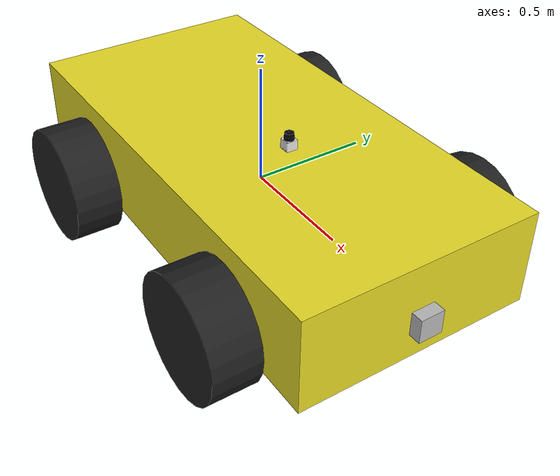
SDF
<?xml version='1.0'?>
<sdf version='1.6'>
  <model name='av_robot'>
    <link name='base_frame'>
      <pose frame=''>0 5e-06 0.04 0 -0 0</pose>
      <inertial>
        <mass>20</mass>
        <inertia>
          <ixx>0</ixx>
          <ixy>0</ixy>
          <ixz>0</ixz>
          <iyy>0</iyy>
          <iyz>0</iyz>
          <izz>0</izz>
        </inertia>
        <pose frame=''>0 0 0 0 -0 0</pose>
      </inertial>
      <gravity>1</gravity>
      <self_collide>0</self_collide>
      <kinematic>0</kinematic>
      <visual name='visual'>
        <pose frame=''>0 0 0 0 -0 0</pose>
        <geometry>
          <box>
            <size>2 1 0.4</size>
          </box>
        </geometry>
        <material>
          <lighting>1</lighting>
          <script>
            <uri>file://media/materials/scripts/gazebo.material</uri>
            <name>Gazebo/Yellow</name>
          </script>
          <ambient>0.3 0.3 0.3 1</ambient>
          <diffuse>0.7 0.7 0.7 1</diffuse>
          <specular>0.01 0.01 0.01 1</specular>
          <emissive>0 0 0 1</emissive>
          <shader type='vertex'>
            <normal_map>__default__</normal_map>
          </shader>
        </material>
        <cast_shadows>1</cast_shadows>
        <transparency>0</transparency>
      </visual>
      <collision name='collision'>
        <laser_retro>0</laser_retro>
        <max_contacts>10</max_contacts>
        <pose frame=''>0 0 0 0 -0 0</pose>
        <geometry>
          <box>
            <size>1 1 0.3</size>
          </box>
        </geometry>
        <surface>
          <friction>
            <ode>
              <mu>1</mu>
              <mu2>1</mu2>
              <fdir1>0 0 0</fdir1>
              <slip1>0</slip1>
              <slip2>0</slip2>
            </ode>
            <torsional>
              <coefficient>1</coefficient>
              <patch_radius>0</patch_radius>
              <surface_radius>0</surface_radius>
              <use_patch_radius>1</use_patch_radius>
              <ode>
                <slip>0</slip>
              </ode>
            </torsional>
          </friction>
          <bounce>
            <restitution_coefficient>0</restitution_coefficient>
            <threshold>1e+06</threshold>
          </bounce>
          <contact>
            <collide_without_contact>0</collide_without_contact>
            <collide_without_contact_bitmask>1</collide_without_contact_bitmask>
            <collide_bitmask>1</collide_bitmask>
            <ode>
              <soft_cfm>0</soft_cfm>
              <soft_erp>0.2</soft_erp>
              <kp>1e+13</kp>
              <kd>1</kd>
              <max_vel>0.01</max_vel>
              <min_depth>0</min_depth>
            </ode>
            <bullet>
              <split_impulse>1</split_impulse>
              <split_impulse_penetration_threshold>-0.01</split_impulse_penetration_threshold>
              <soft_cfm>0</soft_cfm>
              <soft_erp>0.2</soft_erp>
              <kp>1e+13</kp>
              <kd>1</kd>
            </bullet>
          </contact>
        </surface>
      </collision>
    </link>

    <link name='front_left_wheel'>
      <pose frame=''>0.55 0.6 -0.1 1.5707 -0 0</pose>
      <inertial>
        <mass>0.01</mass>
        <inertia>
          <ixx>0</ixx>
          <ixy>0</ixy>
          <ixz>0</ixz>
          <iyy>0</iyy>
          <iyz>0</iyz>
          <izz>0</izz>
        </inertia>
        <pose frame=''>0 0 0 0 -0 0</pose>
      </inertial>
      <gravity>1</gravity>
      <self_collide>0</self_collide>
      <kinematic>0</kinematic>
      <visual name='visual'>
        <pose frame=''>0 0 0 0 -0 0</pose>
        <geometry>
          <cylinder>
            <radius>0.25</radius>
            <length>0.2</length>
          </cylinder>
        </geometry>
        <material>
          <lighting>1</lighting>
          <script>
            <uri>file://media/materials/scripts/gazebo.material</uri>
            <name>Gazebo/Black</name>
          </script>
          <ambient>0.3 0.3 0.3 1</ambient>
          <diffuse>0.7 0.7 0.7 1</diffuse>
          <specular>0.01 0.01 0.01 1</specular>
          <emissive>0 0 0 1</emissive>
          <shader type='vertex'>
            <normal_map>__default__</normal_map>
          </shader>
        </material>
        <cast_shadows>1</cast_shadows>
        <transparency>0</transparency>
      </visual>
      <collision name='collision'>
        <laser_retro>0</laser_retro>
        <max_contacts>10</max_contacts>
        <pose frame=''>0 0 0 0 -0 0</pose>
        <geometry>
          <cylinder>
            <radius>0.25</radius>
            <length>0.2</length>
          </cylinder>
        </geometry>
        <surface>
          <friction>
            <ode>
              <mu>1</mu>
              <mu2>1</mu2>
              <fdir1>0 0 0</fdir1>
              <slip1>0</slip1>
              <slip2>0</slip2>
            </ode>
            <torsional>
              <coefficient>1</coefficient>
              <patch_radius>0</patch_radius>
              <surface_radius>0</surface_radius>
              <use_patch_radius>1</use_patch_radius>
              <ode>
                <slip>0</slip>
              </ode>
            </torsional>
          </friction>
          <bounce>
            <restitution_coefficient>0</restitution_coefficient>
            <threshold>1e+06</threshold>
          </bounce>
          <contact>
            <collide_without_contact>0</collide_without_contact>
            <collide_without_contact_bitmask>1</collide_without_contact_bitmask>
            <collide_bitmask>1</collide_bitmask>
            <ode>
              <soft_cfm>0</soft_cfm>
              <soft_erp>0.2</soft_erp>
              <kp>1e+13</kp>
              <kd>1</kd>
              <max_vel>0.01</max_vel>
              <min_depth>0</min_depth>
            </ode>
            <bullet>
              <split_impulse>1</split_impulse>
              <split_impulse_penetration_threshold>-0.01</split_impulse_penetration_threshold>
              <soft_cfm>0</soft_cfm>
              <soft_erp>0.2</soft_erp>
              <kp>1e+13</kp>
              <kd>1</kd>
            </bullet>
          </contact>
        </surface>
      </collision>
    </link>
    <link name='front_right_wheel'>
      <pose frame=''>0.55 -0.6 -0.1 1.5707 -0 0</pose>
      <inertial>
        <mass>0.01</mass>
        <inertia>
          <ixx>0</ixx>
          <ixy>0</ixy>
          <ixz>0</ixz>
          <iyy>0</iyy>
          <iyz>0</iyz>
          <izz>0</izz>
        </inertia>
        <pose frame=''>0 0 0 0 -0 0</pose>
      </inertial>
      <self_collide>0</self_collide>
      <kinematic>0</kinematic>
      <gravity>1</gravity>
      <visual name='visual'>
        <pose frame=''>0 0 0 0 -0 0</pose>
        <geometry>
          <cylinder>
            <radius>0.25</radius>
            <length>0.2</length>
          </cylinder>
        </geometry>
        <material>
          <lighting>1</lighting>
          <script>
            <uri>file://media/materials/scripts/gazebo.material</uri>
            <name>Gazebo/Black</name>
          </script>
          <ambient>0.3 0.3 0.3 1</ambient>
          <diffuse>0.7 0.7 0.7 1</diffuse>
          <specular>0.01 0.01 0.01 1</specular>
          <emissive>0 0 0 1</emissive>
          <shader type='vertex'>
            <normal_map>__default__</normal_map>
          </shader>
        </material>
        <cast_shadows>1</cast_shadows>
        <transparency>0</transparency>
      </visual>
      <collision name='collision'>
        <laser_retro>0</laser_retro>
        <max_contacts>10</max_contacts>
        <pose frame=''>0 0 0 0 -0 0</pose>
        <geometry>
          <cylinder>
            <radius>0.25</radius>
            <length>0.2</length>
          </cylinder>
        </geometry>
        <surface>
          <friction>
            <ode>
              <mu>1</mu>
              <mu2>1</mu2>
              <fdir1>0 0 0</fdir1>
              <slip1>0</slip1>
              <slip2>0</slip2>
            </ode>
            <torsional>
              <coefficient>1</coefficient>
              <patch_radius>0</patch_radius>
              <surface_radius>0</surface_radius>
              <use_patch_radius>1</use_patch_radius>
              <ode>
                <slip>0</slip>
              </ode>
            </torsional>
          </friction>
          <bounce>
            <restitution_coefficient>0</restitution_coefficient>
            <threshold>1e+06</threshold>
          </bounce>
          <contact>
            <collide_without_contact>0</collide_without_contact>
            <collide_without_contact_bitmask>1</collide_without_contact_bitmask>
            <collide_bitmask>1</collide_bitmask>
            <ode>
              <soft_cfm>0</soft_cfm>
              <soft_erp>0.2</soft_erp>
              <kp>1e+13</kp>
              <kd>1</kd>
              <max_vel>0.01</max_vel>
              <min_depth>0</min_depth>
            </ode>
            <bullet>
              <split_impulse>1</split_impulse>
              <split_impulse_penetration_threshold>-0.01</split_impulse_penetration_threshold>
              <soft_cfm>0</soft_cfm>
              <soft_erp>0.2</soft_erp>
              <kp>1e+13</kp>
              <kd>1</kd>
            </bullet>
          </contact>
        </surface>
      </collision>
    </link>
    <link name='back_left_wheel'>
      <pose frame=''>-0.55 0.6 -0.1 1.5707 -0 0</pose>
      <inertial>
        <mass>0.01</mass>
        <inertia>
          <ixx>0</ixx>
          <ixy>0</ixy>
          <ixz>0</ixz>
          <iyy>0</iyy>
          <iyz>0</iyz>
          <izz>0</izz>
        </inertia>
        <pose frame=''>0 0 0 0 -0 0</pose>
      </inertial>
      <self_collide>0</self_collide>
      <kinematic>0</kinematic>
      <gravity>1</gravity>
      <visual name='visual'>
        <pose frame=''>0 0 0 0 -0 0</pose>
        <geometry>
          <cylinder>
            <radius>0.25</radius>
            <length>0.2</length>
          </cylinder>
        </geometry>
        <material>
          <lighting>1</lighting>
          <script>
            <uri>file://media/materials/scripts/gazebo.material</uri>
            <name>Gazebo/Black</name>
          </script>
          <ambient>0.3 0.3 0.3 1</ambient>
          <diffuse>0.7 0.7 0.7 1</diffuse>
          <specular>0.01 0.01 0.01 1</specular>
          <emissive>0 0 0 1</emissive>
          <shader type='vertex'>
            <normal_map>__default__</normal_map>
          </shader>
        </material>
        <cast_shadows>1</cast_shadows>
        <transparency>0</transparency>
      </visual>
      <collision name='collision'>
        <laser_retro>0</laser_retro>
        <max_contacts>10</max_contacts>
        <pose frame=''>0 0 0 0 -0 0</pose>
        <geometry>
          <cylinder>
            <radius>0.25</radius>
            <length>0.2</length>
          </cylinder>
        </geometry>
        <surface>
          <friction>
            <ode>
              <mu>1</mu>
              <mu2>1</mu2>
              <fdir1>0 0 0</fdir1>
              <slip1>0</slip1>
              <slip2>0</slip2>
            </ode>
            <torsional>
              <coefficient>1</coefficient>
              <patch_radius>0</patch_radius>
              <surface_radius>0</surface_radius>
              <use_patch_radius>1</use_patch_radius>
              <ode>
                <slip>0</slip>
              </ode>
            </torsional>
          </friction>
          <bounce>
            <restitution_coefficient>0</restitution_coefficient>
            <threshold>1e+06</threshold>
          </bounce>
          <contact>
            <collide_without_contact>0</collide_without_contact>
            <collide_without_contact_bitmask>1</collide_without_contact_bitmask>
            <collide_bitmask>1</collide_bitmask>
            <ode>
              <soft_cfm>0</soft_cfm>
              <soft_erp>0.2</soft_erp>
              <kp>1e+13</kp>
              <kd>1</kd>
              <max_vel>0.01</max_vel>
              <min_depth>0</min_depth>
            </ode>
            <bullet>
              <split_impulse>1</split_impulse>
              <split_impulse_penetration_threshold>-0.01</split_impulse_penetration_threshold>
              <soft_cfm>0</soft_cfm>
              <soft_erp>0.2</soft_erp>
              <kp>1e+13</kp>
              <kd>1</kd>
            </bullet>
          </contact>
        </surface>
      </collision>
    </link>
    <link name='back_right_wheel'>
      <pose frame=''>-0.55 -0.6 -0.1 1.5707 -0 0</pose>
      <inertial>
        <mass>0.01</mass>
        <inertia>
          <ixx>0</ixx>
          <ixy>0</ixy>
          <ixz>0</ixz>
          <iyy>0</iyy>
          <iyz>0</iyz>
          <izz>0</izz>
        </inertia>
        <pose frame=''>0 0 0 0 -0 0</pose>
      </inertial>
      <self_collide>0</self_collide>
      <kinematic>0</kinematic>
      <gravity>1</gravity>
      <visual name='visual'>
        <pose frame=''>0 0 0 0 -0 0</pose>
        <geometry>
          <cylinder>
            <radius>0.25</radius>
            <length>0.2</length>
          </cylinder>
        </geometry>
        <material>
          <lighting>1</lighting>
          <script>
            <uri>file://media/materials/scripts/gazebo.material</uri>
            <name>Gazebo/Black</name>
          </script>
          <ambient>0.3 0.3 0.3 1</ambient>
          <diffuse>0.7 0.7 0.7 1</diffuse>
          <specular>0.01 0.01 0.01 1</specular>
          <emissive>0 0 0 1</emissive>
          <shader type='vertex'>
            <normal_map>__default__</normal_map>
          </shader>
        </material>
        <cast_shadows>1</cast_shadows>
        <transparency>0</transparency>
      </visual>
      <collision name='collision'>
        <laser_retro>0</laser_retro>
        <max_contacts>10</max_contacts>
        <pose frame=''>0 0 0 0 -0 0</pose>
        <geometry>
          <cylinder>
            <radius>0.25</radius>
            <length>0.2</length>
          </cylinder>
        </geometry>
        <surface>
          <friction>
            <ode>
              <mu>1</mu>
              <mu2>1</mu2>
              <fdir1>0 0 0</fdir1>
              <slip1>0</slip1>
              <slip2>0</slip2>
            </ode>
            <torsional>
              <coefficient>1</coefficient>
              <patch_radius>0</patch_radius>
              <surface_radius>0</surface_radius>
              <use_patch_radius>1</use_patch_radius>
              <ode>
                <slip>0</slip>
              </ode>
            </torsional>
          </friction>
          <bounce>
            <restitution_coefficient>0</restitution_coefficient>
            <threshold>1e+06</threshold>
          </bounce>
          <contact>
            <collide_without_contact>0</collide_without_contact>
            <collide_without_contact_bitmask>1</collide_without_contact_bitmask>
            <collide_bitmask>1</collide_bitmask>
            <ode>
              <soft_cfm>0</soft_cfm>
              <soft_erp>0.2</soft_erp>
              <kp>1e+13</kp>
              <kd>1</kd>
              <max_vel>0.01</max_vel>
              <min_depth>0</min_depth>
            </ode>
            <bullet>
              <split_impulse>1</split_impulse>
              <split_impulse_penetration_threshold>-0.01</split_impulse_penetration_threshold>
              <soft_cfm>0</soft_cfm>
              <soft_erp>0.2</soft_erp>
              <kp>1e+13</kp>
              <kd>1</kd>
            </bullet>
          </contact>
        </surface>
      </collision>
    </link>

    <model name='img_camera'>
      <link name='camera_link'>
        <gravity>0</gravity>
        <pose frame=''>0 0 0 0 -0 0</pose>
        <visual name='visual'>
          <geometry>
            <box>
              <size>0.1 0.1 0.1</size>
            </box>
          </geometry>
        </visual>
        <sensor name='sensor' type='camera'>
          <update_rate>30</update_rate>
          <visualize>true</visualize>
          <plugin name="camera_controller" filename="libgazebo_ros_camera.so">
            <alwaysOn>true</alwaysOn>
            <updateRate>30</updateRate>
            <cameraName>camera_front</cameraName>
            <imageTopicName>image_raw</imageTopicName>
            <cameraInfoTopicName>camera_info</cameraInfoTopicName>
            <frameName>camera_link</frameName>
            <hackBaseline>0.07</hackBaseline>
            <distortionK1>0.0</distortionK1>
            <distortionK2>0.0</distortionK2>
            <distortionK3>0.0</distortionK3>
            <distortionT1>0.0</distortionT1>
            <distortionT2>0.0</distortionT2>
          </plugin>
        </sensor>
      </link>
      <pose frame=''>1 0.0 0 0 0 0</pose>
    </model>

    <model name="hokuyo">
      <pose>0 0 0.035 0 0 0</pose>
      <link name="link">
        <inertial>
          <mass>0.1</mass>
        </inertial>
        <visual name="visual">
          <geometry>
            <mesh>
              <uri>model://hokuyo/meshes/hokuyo.dae</uri>
            </mesh>
          </geometry>
        </visual>
        <collision name="collision-base">
          <pose>0 0 -0.0145 0 0 0</pose>
          <geometry>
            <box>
              <size>0.05 0.05 0.041</size>
            </box>
          </geometry>
        </collision>
        <collision name="collision-top">
          <pose>0 0 0.0205 0 0 0</pose>
          <geometry>
            <cylinder>
              <radius>0.021</radius>
              <length>0.029</length>
            </cylinder>
          </geometry>
        </collision>
        <sensor name="head_hokuyo_sensor" type="ray">
          <pose>0.01 0 0.0175 0 -0 0</pose>
          <plugin name="gazebo_ros_head_hokuyo_controller" filename="libgazebo_ros_laser.so">
            <topicName>/av_robot/laser/scan</topicName>
            <frameName>hokuyo</frameName>
          </plugin>
          <update_rate>10</update_rate>
          <ray>
            <scan>
              <horizontal>
                <samples>640</samples>
                <resolution>1</resolution>
                <min_angle>-2.26889</min_angle>
                <max_angle>2.268899</max_angle>
              </horizontal>
            </scan>
            <range>
              <min>0.08</min>
              <max>10</max>
              <resolution>0.01</resolution>
            </range>
            <noise>
              <type>gaussian</type>
              <mean>0.0</mean>
              <stddev>0.01</stddev>
            </noise>
          </ray>
          <always_on>1</always_on>
          <visualize>true</visualize>
        </sensor>
        <pose>0.2 0 0.25 0 0 0</pose>
      </link>
    </model>
    <joint name="hokuyo_joint" type="fixed">
      <child>hokuyo::link</child>
      <parent>base_frame</parent>
    </joint>

    <joint name='front_left_hinge' type='revolute'>
      <parent>base_frame</parent>
      <child>front_left_wheel</child>
      <pose frame=''>0 0 0 0 -0 0</pose>
      <axis>
        <xyz>0 0 1</xyz>
        <use_parent_model_frame>0</use_parent_model_frame>
        <limit>
          <lower>-1.79769e+308</lower>
          <upper>1.79769e+308</upper>
          <effort>-1</effort>
          <velocity>-1</velocity>
        </limit>
        <dynamics>
          <spring_reference>0</spring_reference>
          <spring_stiffness>0</spring_stiffness>
          <damping>0</damping>
        </dynamics>
      </axis>
      <physics>
        <ode>
          <limit>
            <cfm>0</cfm>
            <erp>0.2</erp>
          </limit>
          <suspension>
            <cfm>0</cfm>
            <erp>0.2</erp>
          </suspension>
        </ode>
      </physics>
    </joint>
    <joint name='front_right_hinge' type='revolute'>
      <parent>base_frame</parent>
      <child>front_right_wheel</child>
      <pose frame=''>0 0 0 0 -0 0</pose>
      <axis>
        <xyz>-0 -0 -1</xyz>
        <use_parent_model_frame>0</use_parent_model_frame>
        <limit>
          <lower>-1.79769e+308</lower>
          <upper>1.79769e+308</upper>
          <effort>-1</effort>
          <velocity>-1</velocity>
        </limit>
        <dynamics>
          <spring_reference>0</spring_reference>
          <spring_stiffness>0</spring_stiffness>
          <damping>0</damping>
        </dynamics>
      </axis>
      <physics>
        <ode>
          <limit>
            <cfm>0</cfm>
            <erp>0.2</erp>
          </limit>
          <suspension>
            <cfm>0</cfm>
            <erp>0.2</erp>
          </suspension>
        </ode>
      </physics>
    </joint>
    <joint name='back_left_hinge' type='revolute'>
      <parent>base_frame</parent>
      <child>back_left_wheel</child>
      <pose frame=''>0 0 0 0 -0 0</pose>
      <axis>
        <xyz>0 0 1</xyz>
        <use_parent_model_frame>0</use_parent_model_frame>
        <limit>
          <lower>-1.79769e+308</lower>
          <upper>1.79769e+308</upper>
          <effort>-1</effort>
          <velocity>-1</velocity>
        </limit>
        <dynamics>
          <spring_reference>0</spring_reference>
          <spring_stiffness>0</spring_stiffness>
          <damping>0</damping>
        </dynamics>
      </axis>
      <physics>
        <ode>
          <limit>
            <cfm>0</cfm>
            <erp>0.2</erp>
          </limit>
          <suspension>
            <cfm>0</cfm>
            <erp>0.2</erp>
          </suspension>
        </ode>
      </physics>
    </joint>
    <joint name='back_right_hinge' type='revolute'>
      <parent>base_frame</parent>
      <child>back_right_wheel</child>
      <pose frame=''>0 0 0 0 -0 0</pose>
      <axis>
        <xyz>-0 -0 -1</xyz>
        <use_parent_model_frame>0</use_parent_model_frame>
        <limit>
          <lower>-1.79769e+308</lower>
          <upper>1.79769e+308</upper>
          <effort>-1</effort>
          <velocity>-1</velocity>
        </limit>
        <dynamics>
          <spring_reference>0</spring_reference>
          <spring_stiffness>0</spring_stiffness>
          <damping>0</damping>
        </dynamics>
      </axis>
      <physics>
        <ode>
          <limit>
            <cfm>0</cfm>
            <erp>0.2</erp>
          </limit>
          <suspension>
            <cfm>0</cfm>
            <erp>0.2</erp>
          </suspension>
        </ode>
      </physics>
    </joint>

    <joint name='fixed_img_camera_joint' type='fixed'>
      <parent>base_frame</parent>
      <child>img_camera::camera_link</child>
      <pose frame=''>0 0 0 0 -0 0</pose>
      <physics>
        <ode>
          <limit>
            <cfm>0</cfm>
            <erp>0.2</erp>
          </limit>
          <suspension>
            <cfm>0</cfm>
            <erp>0.2</erp>
          </suspension>
        </ode>
      </physics>
    </joint>
    <plugin name="skid_steer_drive_controller" filename="libgazebo_ros_skid_steer_drive.so">
      <updateRate>100.0</updateRate>
      <leftFrontJoint>front_left_hinge</leftFrontJoint>
      <rightFrontJoint>front_right_hinge</rightFrontJoint>
      <leftRearJoint>back_left_hinge</leftRearJoint>
      <rightRearJoint>back_right_hinge</rightRearJoint>
      <wheelSeparation>1.2</wheelSeparation>
      <wheelDiameter>0.5</wheelDiameter>
      <MaxForce>5.0</MaxForce>
      <torque>200</torque>
      <commandTopic>cmd_vel</commandTopic>
      <robotBaseFrame>base_frame</robotBaseFrame>
      <odometryTopic>/av_robot/odom</odometryTopic>
      <odometryFrame>odom</odometryFrame>
      <broadcastTF>1</broadcastTF>
    </plugin>
    <static>0</static>
    <allow_auto_disable>1</allow_auto_disable>
  </model>
</sdf>
